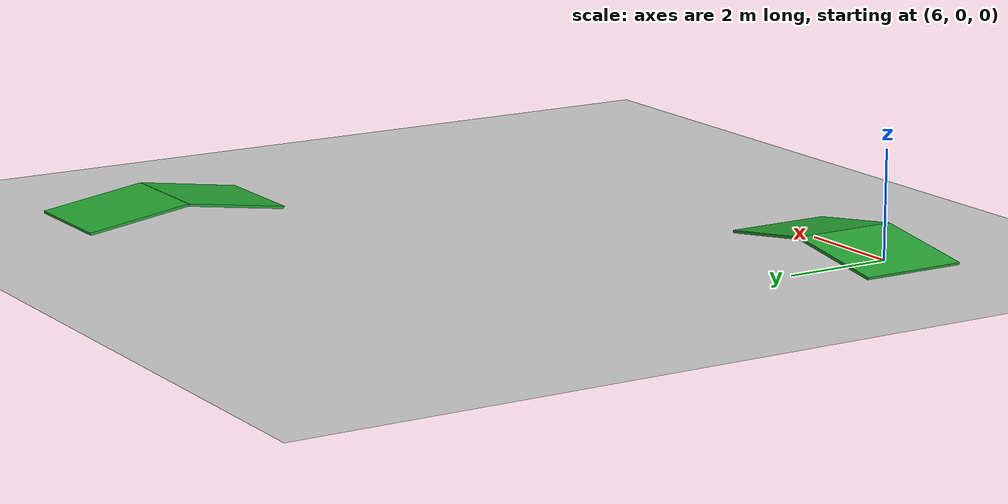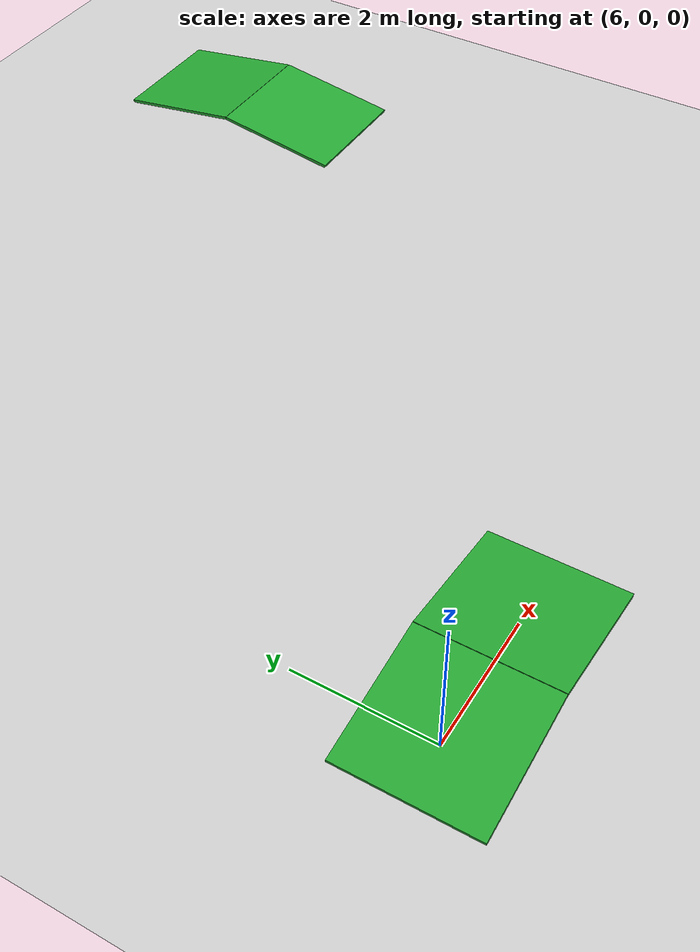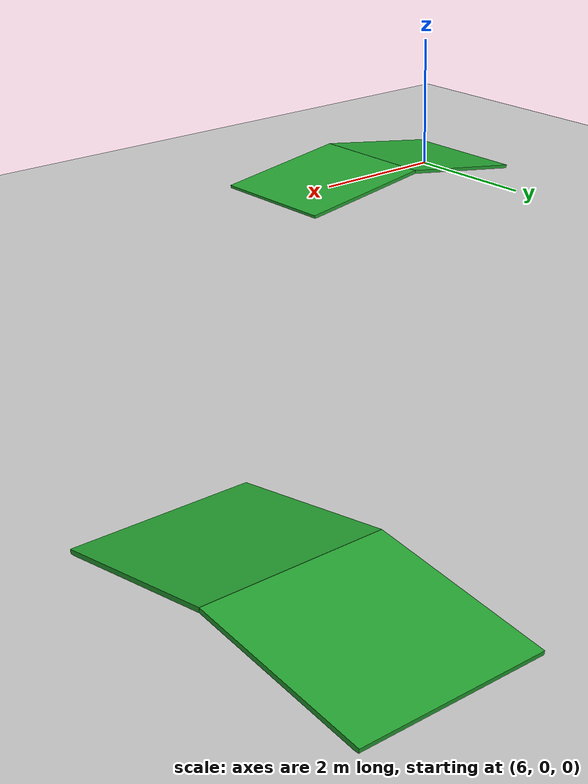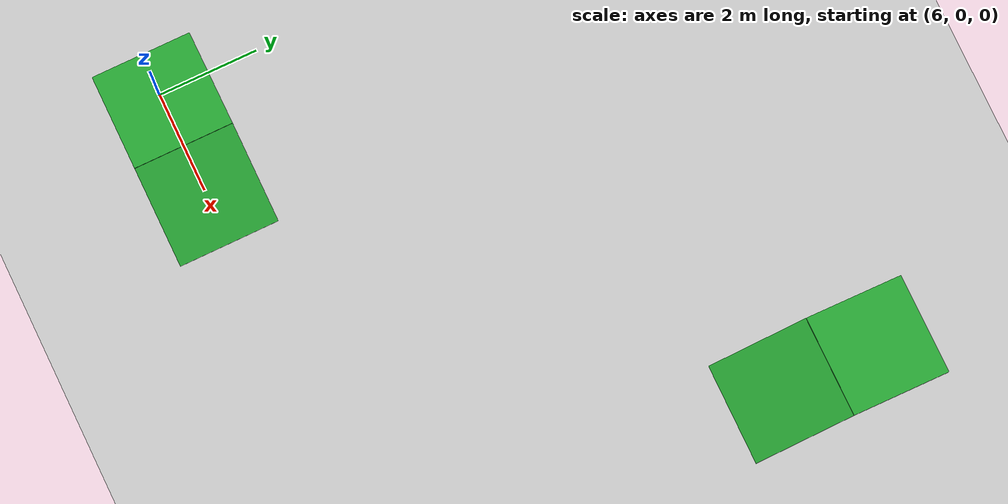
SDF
<sdf version="1.6">
 <world name="default">
  <scene><grid>0</grid><shadows>1</shadows></scene>
  <include><uri>model://ground_plane</uri></include>
  <include><uri>model://sun</uri></include>
  <include><uri>model://ramp</uri><pose>7.14 0 0 0 0 1.570796</pose><name>Ramp1</name></include>
  <include><uri>model://ramp</uri><pose>16 9 0 0 0 0</pose><name>Ramp2</name></include>
 </world>
</sdf>

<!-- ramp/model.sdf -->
<sdf version="1.4">
	<model name="ramp">
		<static>True</static>

		<link name="box1">
			<pose>0 -0.9889 0.1484 0.148 0 0</pose>
			<visual name="box1_vis">
				<geometry>
					<box>
						<size>2 2 0.05</size>
					</box>
				</geometry>
				<material>
					<script>
						<uri>file://media/materials/scripts/gazebo.material</uri>
						<name>Gazebo/Green</name>
					</script>
				</material>
			</visual>

			<collision name="collision">
				<geometry>
					<box>
						<size>2 2 0.05</size>
					</box>
				</geometry>
				<surface>
					<friction>
						<ode>
							<mu>2</mu>
							<mu2>2</mu2>
						</ode>
					</friction>
				</surface>
			</collision>
		</link>

		<link name="box2">
			<pose>0 0.9889 0.1484 -0.148 0 0</pose>
			<visual name="box2_vis">
				<geometry>
					<box>
						<size>2 2 0.05</size>
					</box>
				</geometry>
				<material>
					<script>
						<uri>file://media/materials/scripts/gazebo.material</uri>
						<name>Gazebo/Green</name>
					</script>
				</material>
			</visual>

			<collision name="collision">
				<geometry>
					<box>
						<size>2 2 0.05</size>
					</box>
				</geometry>
				<surface>
					<friction>
						<ode>
							<mu>2</mu>
							<mu2>2</mu2>
						</ode>
					</friction>
				</surface>
			</collision>
		</link>

	</model>
</sdf>
